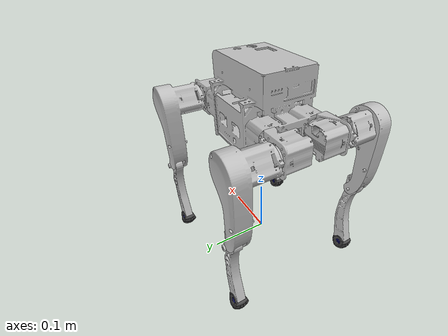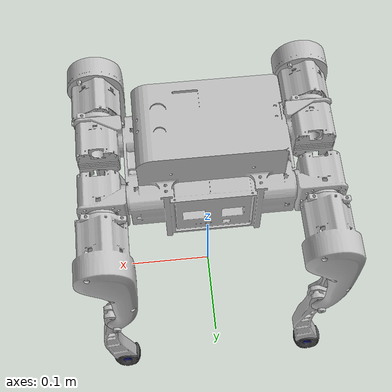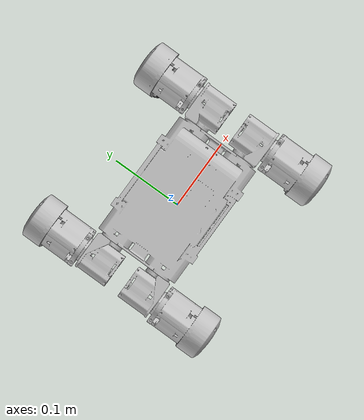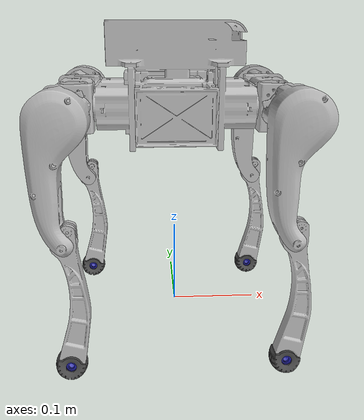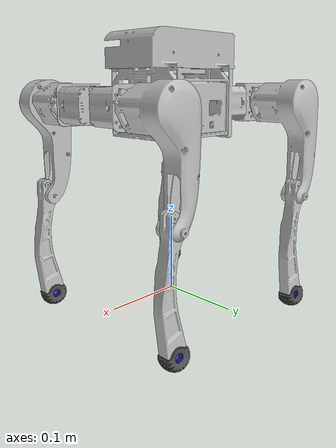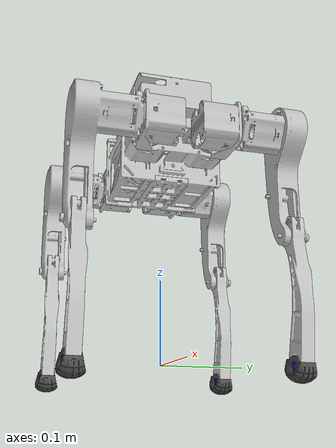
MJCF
<mujoco model="HTDW_4438">
    <compiler angle="radian" meshdir="../meshes/" />
    <size njmax="500" nconmax="100" />

    <asset>
        <mesh name="base_link" file="base_link.STL" />
        <mesh name="FL_hip" file="FL_hip.STL" />
        <mesh name="FL_thigh" file="FL_thigh.STL" />
        <mesh name="FL_calf" file="FL_calf.STL" />
        <mesh name="FL_foot" file="FL_foot.STL" />
        <mesh name="FR_hip" file="FR_hip.STL" />
        <mesh name="FR_thigh" file="FR_thigh.STL" />
        <mesh name="FR_calf" file="FR_calf.STL" />
        <mesh name="FR_foot" file="FR_foot.STL" />
        <mesh name="RL_hip" file="RL_hip.STL" />
        <mesh name="RL_thigh" file="RL_thigh.STL" />
        <mesh name="RL_calf" file="RL_calf.STL" />
        <mesh name="RL_foot" file="RL_foot.STL" />
        <mesh name="RR_hip" file="RR_hip.STL" />
        <mesh name="RR_thigh" file="RR_thigh.STL" />
        <mesh name="RR_calf" file="RR_calf.STL" />
        <mesh name="RR_foot" file="RR_foot.STL" />
    </asset>

    <default>
        <joint limited="true" damping="0.0" frictionloss="0.0" armature="0.008419"/>
        <geom contype="1" conaffinity="1" friction="1.0 0.005 0.0001" solref="0.02 0.8" solimp="0.9 0.95 0.01" />
    </default>

    <worldbody>
        <!-- Robot Base (Root Body) -->
        <body name="base_link" pos="0 0 0.25" quat="1 0 0 0">
            <joint name="float_base" type="free" limited="false"/>
            <inertial pos="-0.00150909 -0.00098889 0.00305206" quat="1 0 0 0" mass="2.38259971" diaginertia="0.00432585 0.00844472 0.00822046"/>
            <site name="imu" pos="0 0 0" />

            <!-- Base Link 视觉 + 碰撞 -->
            <geom type="mesh" contype="0" conaffinity="0" group="1" rgba="0.752941 0.752941 0.752941 1" mesh="base_link" />
            <geom type="mesh" contype="1" conaffinity="1" group="3" rgba="0.8 0.8 0.8 1" mesh="base_link" />

            <!-- Front Left Leg -->
            <body name="FL_hip" pos="0.11415 0.035 0">
            <inertial pos="-0.00110429 -9.855e-05 -0.000137" quat="0.450668 0.60653 0.309529 0.577244" mass="0.251695" diaginertia="4.61338e-05 4.37946e-05 3.81716e-05" />
            <joint name="FL_hip_joint" pos="0 0 0" axis="1 0 0" limited="true" range="-0.6 0.6" />
            <!-- 视觉geom -->
            <geom type="mesh" contype="0" conaffinity="0" group="1" rgba="0.752941 0.752941 0.752941 1" mesh="FL_hip" />
            <!-- 碰撞geom -->
            <geom type="mesh" contype="1" conaffinity="1" group="3" rgba="0.8 0.8 0.8 1" mesh="FL_hip" />

            <body name="FL_thigh" pos="0 0.0822 0">
                <inertial pos="-0.00114943 -0.0253357 -0.0099421" quat="0.98825 0.148595 0.0258141 0.0247813" mass="0.342256" diaginertia="0.000444623 0.000407618 0.000110138" />
                <joint name="FL_thigh_joint" pos="0 0 0" axis="0 1 0" limited="true" range="-1.57 3.49" />
                <geom type="mesh" contype="0" conaffinity="0" group="1" rgba="0.752941 0.752941 0.752941 1" mesh="FL_thigh" />
                <geom type="mesh" contype="1" conaffinity="1" group="3" rgba="0.8 0.8 0.8 1" mesh="FL_thigh" />

                <body name="FL_calf" pos="0 0 -0.12">
                    <inertial pos="0.00622014 1.43253e-05 -0.0698232" quat="0.707061 0.0161134 0.0164492 0.706778" mass="0.0402252" diaginertia="0.000112853 0.000110698 3.9154e-06" />
                    <joint name="FL_calf_joint" pos="0 0 0" axis="0 1 0" limited="true" range="-2.5 -1.5" />
                    <geom type="mesh" contype="0" conaffinity="0" group="1" rgba="0.752941 0.752941 0.752941 1" mesh="FL_calf" />
                    <geom type="mesh" contype="1" conaffinity="1" group="3" rgba="0.8 0.8 0.8 1" mesh="FL_calf" />

                    <!-- Foot -->
                    <geom pos="0 0 -0.13799" type="mesh" contype="0" conaffinity="0" group="1" rgba="0.298039 0.298039 0.298039 1" mesh="FL_foot" />
                    <geom pos="0 0 -0.13799" type="sphere" size="0.01675" contype="1" conaffinity="1" group="3" rgba="0.8 0.8 0.8 1" />
                    <site name="FL_foot_site" pos="0 0 -0.13799" size="0.01" rgba="0 0 1 0.5"/>
                </body>
            </body>
        </body>

        <!-- Front Right Leg -->
        <body name="FR_hip" pos="0.11415 -0.035 0">
            <inertial pos="-0.00127689 9.855e-05 -0.000137" quat="0.593663 0.299443 0.586351 0.462699" mass="0.251695" diaginertia="4.59688e-05 4.37995e-05 3.81217e-05" />
            <joint name="FR_hip_joint" pos="0 0 0" axis="1 0 0" limited="true" range="-0.6 0.6" />
            <geom type="mesh" contype="0" conaffinity="0" group="1" rgba="0.752941 0.752941 0.752941 1" mesh="FR_hip" />
            <geom type="mesh" contype="1" conaffinity="1" group="3" rgba="0.8 0.8 0.8 1" mesh="FR_hip" />

            <body name="FR_thigh" pos="0 -0.0822 0">
                <inertial pos="-0.00124929 0.0253376 -0.0101248" quat="0.988002 -0.149768 0.0247997 -0.0283961" mass="0.342238" diaginertia="0.000443341 0.000406531 0.000109709" />
                <joint name="FR_thigh_joint" pos="0 0 0" axis="0 1 0" limited="true" range="-1.57 3.49" />
                <geom type="mesh" contype="0" conaffinity="0" group="1" rgba="0.752941 0.752941 0.752941 1" mesh="FR_thigh" />
                <geom type="mesh" contype="1" conaffinity="1" group="3" rgba="0.8 0.8 0.8 1" mesh="FR_thigh" />

                <body name="FR_calf" pos="0 0 -0.12">
                    <inertial pos="0.00622014 -1.56733e-05 -0.0698232" quat="0.706792 0.0164521 0.0161104 0.707046" mass="0.0402252" diaginertia="0.000112853 0.000110698 3.9154e-06" />
                    <joint name="FR_calf_joint" pos="0 0 0" axis="0 1 0" limited="true" range="-2.5 -1.5" />
                    <geom type="mesh" contype="0" conaffinity="0" group="1" rgba="0.752941 0.752941 0.752941 1" mesh="FR_calf" />
                    <geom type="mesh" contype="1" conaffinity="1" group="3" rgba="0.8 0.8 0.8 1" mesh="FR_calf" />

                    <geom pos="0 0 -0.138" type="mesh" contype="0" conaffinity="0" group="1" rgba="0.298039 0.298039 0.298039 1" mesh="FR_foot" />
                    <geom pos="0 0 -0.138" type="sphere" size="0.01675" contype="1" conaffinity="1" group="3" rgba="0.8 0.8 0.8 1" />
                    <site name="FR_foot_site" pos="0 0 -0.138" size="0.01" rgba="0 0 1 0.5"/>
                </body>
            </body>
        </body>

        <!-- Rear Left Leg -->
        <body name="RL_hip" pos="-0.11415 0.035 0">
            <inertial pos="0.00127689 -9.855e-05 -0.000137" quat="0.299443 0.593663 0.462699 0.586351" mass="0.251695" diaginertia="4.59688e-05 4.37995e-05 3.81217e-05" />
            <joint name="RL_hip_joint" pos="0 0 0" axis="1 0 0" limited="true" range="-0.6 0.6" />
            <geom type="mesh" contype="0" conaffinity="0" group="1" rgba="0.752941 0.752941 0.752941 1" mesh="RL_hip" />
            <geom type="mesh" contype="1" conaffinity="1" group="3" rgba="0.8 0.8 0.8 1" mesh="RL_hip" />

            <body name="RL_thigh" pos="0 0.0822 0">
                <inertial pos="-0.00114943 -0.0253357 -0.0099421" quat="0.98825 0.148595 0.0258141 0.0247813" mass="0.342256" diaginertia="0.000444623 0.000407618 0.000110138" />
                <joint name="RL_thigh_joint" pos="0 0 0" axis="0 1 0" limited="true" range="-1.57 3.49" />
                <geom type="mesh" contype="0" conaffinity="0" group="1" rgba="0.752941 0.752941 0.752941 1" mesh="RL_thigh" />
                <geom type="mesh" contype="1" conaffinity="1" group="3" rgba="0.8 0.8 0.8 1" mesh="RL_thigh" />

                <body name="RL_calf" pos="0 0 -0.12">
                    <inertial pos="0.00622014 1.43253e-05 -0.0698232" quat="0.707061 0.0161134 0.0164492 0.706778" mass="0.0402252" diaginertia="0.000112853 0.000110698 3.9154e-06" />
                    <joint name="RL_calf_joint" pos="0 0 0" axis="0 1 0" limited="true" range="-2.5 -1.5" />
                    <geom type="mesh" contype="0" conaffinity="0" group="1" rgba="0.752941 0.752941 0.752941 1" mesh="RL_calf" />
                    <geom type="mesh" contype="1" conaffinity="1" group="3" rgba="0.8 0.8 0.8 1" mesh="RL_calf" />

                    <geom pos="0 0 -0.138" type="mesh" contype="0" conaffinity="0" group="1" rgba="0.298039 0.298039 0.298039 1" mesh="RL_foot" />
                    <geom pos="0 0 -0.138" type="sphere" size="0.01675" contype="1" conaffinity="1" group="3" rgba="0.8 0.8 0.8 1" />
                    <site name="RL_foot_site" pos="0 0 -0.138" size="0.01" rgba="0 0 1 0.5"/>
                </body>
            </body>
        </body>

        <!-- Rear Right Leg -->
        <body name="RR_hip" pos="-0.11415 -0.035 0">
            <inertial pos="0.00110429 9.855e-05 -0.000137" quat="0.60653 0.450668 0.577244 0.309529" mass="0.251695" diaginertia="4.61338e-05 4.37946e-05 3.81716e-05" />
            <joint name="RR_hip_joint" pos="0 0 0" axis="1 0 0" limited="true" range="-0.6 0.6" />
            <geom type="mesh" contype="0" conaffinity="0" group="1" rgba="0.752941 0.752941 0.752941 1" mesh="RR_hip" />
            <geom type="mesh" contype="1" conaffinity="1" group="3" rgba="0.8 0.8 0.8 1" mesh="RR_hip" />

            <body name="RR_thigh" pos="0 -0.0822 0">
                <inertial pos="-0.00124929 0.0253376 -0.0101248" quat="0.988002 -0.149768 0.0247997 -0.0283961" mass="0.342238" diaginertia="0.000443341 0.000406531 0.000109709" />
                <joint name="RR_thigh_joint" pos="0 0 0" axis="0 1 0" limited="true" range="-1.57 3.49" />
                <geom type="mesh" contype="0" conaffinity="0" group="1" rgba="0.752941 0.752941 0.752941 1" mesh="RR_thigh" />
                <geom type="mesh" contype="1" conaffinity="1" group="3" rgba="0.8 0.8 0.8 1" mesh="RR_thigh" />

                <body name="RR_calf" pos="0 0 -0.12">
                    <inertial pos="0.00622014 -1.56733e-05 -0.0698232" quat="0.706792 0.0164521 0.0161104 0.707046" mass="0.0402252" diaginertia="0.000112853 0.000110698 3.9154e-06" />
                    <joint name="RR_calf_joint" pos="0 0 0" axis="0 1 0" limited="true" range="-2.5 -1.5" />
                    <geom type="mesh" contype="0" conaffinity="0" group="1" rgba="0.752941 0.752941 0.752941 1" mesh="RR_calf" />
                    <geom type="mesh" contype="1" conaffinity="1" group="3" rgba="0.8 0.8 0.8 1" mesh="RR_calf" />

                    <geom pos="0 0 -0.138" type="mesh" contype="0" conaffinity="0" group="1" rgba="0.298039 0.298039 0.298039 1" mesh="RR_foot" />
                    <geom pos="0 0 -0.138" type="sphere" size="0.01675" contype="1" conaffinity="1" group="3" rgba="0.8 0.8 0.8 1" />
                    <site name="RR_foot_site" pos="0 0 -0.138" size="0.01" rgba="0 0 1 0.5"/>
                </body>
            </body>
        </body>
        </body>
    </worldbody>

    <!-- Actuator Section -->
    <actuator>
        <motor name="FL_hip_joint" joint="FL_hip_joint" gear="1" ctrllimited="true" ctrlrange="-10 10"/>
        <motor name="FL_thigh_joint" joint="FL_thigh_joint" gear="1" ctrllimited="true" ctrlrange="-10 10"/>
        <motor name="FL_calf_joint" joint="FL_calf_joint" gear="1" ctrllimited="true" ctrlrange="-10 10"/>

        <motor name="FR_hip_joint" joint="FR_hip_joint" gear="1" ctrllimited="true" ctrlrange="-10 10"/>
        <motor name="FR_thigh_joint" joint="FR_thigh_joint" gear="1" ctrllimited="true" ctrlrange="-10 10"/>
        <motor name="FR_calf_joint" joint="FR_calf_joint" gear="1" ctrllimited="true" ctrlrange="-10 10"/>

        <motor name="RL_hip_joint" joint="RL_hip_joint" gear="1" ctrllimited="true" ctrlrange="-10 10"/>
        <motor name="RL_thigh_joint" joint="RL_thigh_joint" gear="1" ctrllimited="true" ctrlrange="-10 10"/>
        <motor name="RL_calf_joint" joint="RL_calf_joint" gear="1" ctrllimited="true" ctrlrange="-10 10"/>

        <motor name="RR_hip_joint" joint="RR_hip_joint" gear="1" ctrllimited="true" ctrlrange="-10 10"/>
        <motor name="RR_thigh_joint" joint="RR_thigh_joint" gear="1" ctrllimited="true" ctrlrange="-10 10"/>
        <motor name="RR_calf_joint" joint="RR_calf_joint" gear="1" ctrllimited="true" ctrlrange="-10 10"/>
    </actuator>

    <!-- Sensor Section -->
    <sensor>
        <actuatorpos name='FR_hip_joint_p'  actuator='FR_hip_joint' user='13'/>
        <actuatorpos name='FR_thigh_joint_p'  actuator='FR_thigh_joint' user='13'/>
        <actuatorpos name='FR_calf_joint_p'  actuator='FR_calf_joint' user='13'/>
        <actuatorpos name='FL_hip_joint_p'  actuator='FL_hip_joint' user='13'/>
        <actuatorpos name='FL_thigh_joint_p'  actuator='FL_thigh_joint' user='13'/>
        <actuatorpos name='FL_calf_joint_p'  actuator='FL_calf_joint' user='13'/>
        <actuatorpos name='RR_hip_joint_p'  actuator='RR_hip_joint' user='13'/>
        <actuatorpos name='RR_thigh_joint_p'  actuator='RR_thigh_joint' user='13'/>
        <actuatorpos name='RR_calf_joint_p'  actuator='RR_calf_joint' user='13'/>
        <actuatorpos name='RL_hip_joint_p'  actuator='RL_hip_joint' user='13'/>
        <actuatorpos name='RL_thigh_joint_p'  actuator='RL_thigh_joint' user='13'/>
        <actuatorpos name='RL_calf_joint_p'  actuator='RL_calf_joint' user='13'/>

        <actuatorvel name='FR_hip_joint_v'  actuator='FR_hip_joint' user='13'/>
        <actuatorvel name='FR_thigh_joint_v'  actuator='FR_thigh_joint' user='13'/>
        <actuatorvel name='FR_calf_joint_v'  actuator='FR_calf_joint' user='13'/>
        <actuatorvel name='FL_hip_joint_v'  actuator='FL_hip_joint' user='13'/>
        <actuatorvel name='FL_thigh_joint_v'  actuator='FL_thigh_joint' user='13'/>
        <actuatorvel name='FL_calf_joint_v'  actuator='FL_calf_joint' user='13'/>
        <actuatorvel name='RR_hip_joint_v'  actuator='RR_hip_joint' user='13'/>
        <actuatorvel name='RR_thigh_joint_v'  actuator='RR_thigh_joint' user='13'/>
        <actuatorvel name='RR_calf_joint_v'  actuator='RR_calf_joint' user='13'/>
        <actuatorvel name='RL_hip_joint_v'  actuator='RL_hip_joint' user='13'/>
        <actuatorvel name='RL_thigh_joint_v'  actuator='RL_thigh_joint' user='13'/>
        <actuatorvel name='RL_calf_joint_v'  actuator='RL_calf_joint' user='13'/>

        <actuatorfrc name='FR_hip_joint_f'  actuator='FR_hip_joint'  user='13' noise='1e-3'/>
        <actuatorfrc name='FR_thigh_joint_f'  actuator='FR_thigh_joint'  user='13' noise='1e-3'/>
        <actuatorfrc name='FR_calf_joint_f'  actuator='FR_calf_joint'  user='13' noise='1e-3'/>
        <actuatorfrc name='FL_hip_joint_f'  actuator='FL_hip_joint'  user='13' noise='1e-3'/>
        <actuatorfrc name='FL_thigh_joint_f'  actuator='FL_thigh_joint'  user='13' noise='1e-3'/>
        <actuatorfrc name='FL_calf_joint_f'  actuator='FL_calf_joint'  user='13' noise='1e-3'/>
        <actuatorfrc name='RR_hip_joint_f'  actuator='RR_hip_joint'  user='13' noise='1e-3'/>
        <actuatorfrc name='RR_thigh_joint_f'  actuator='RR_thigh_joint'  user='13' noise='1e-3'/>
        <actuatorfrc name='RR_calf_joint_f'  actuator='RR_calf_joint'  user='13' noise='1e-3'/>
        <actuatorfrc name='RL_hip_joint_f'  actuator='RL_hip_joint'  user='13' noise='1e-3'/>
        <actuatorfrc name='RL_thigh_joint_f'  actuator='RL_thigh_joint'  user='13' noise='1e-3'/>
        <actuatorfrc name='RL_calf_joint_f'  actuator='RL_calf_joint'  user='13' noise='1e-3'/>

        <framequat     name='orientation' objtype='site' noise='0.001' objname='imu'/>
        <framepos      name='position' objtype='site' noise='0.001' objname='imu'/>
        <gyro          name='angular-velocity'    site='imu' noise='0.005' cutoff='34.9'/>
        <velocimeter   name='linear-velocity'     site='imu' noise='0.001' cutoff='30'/>
        <accelerometer name='linear-acceleration' site='imu' noise='0.005' cutoff='157'/>
        <magnetometer  name='magnetometer'        site='imu'/>
    </sensor>
</mujoco>
